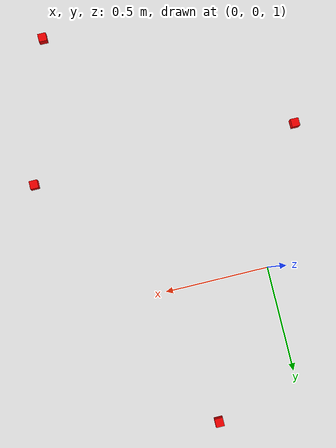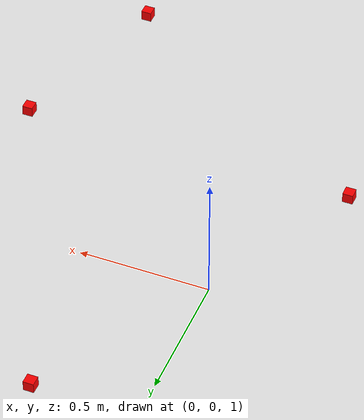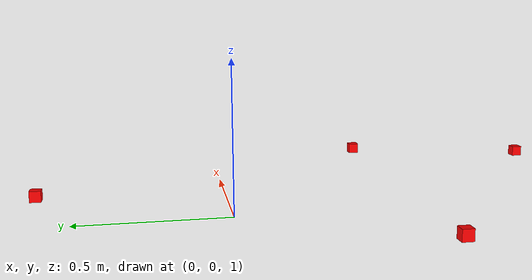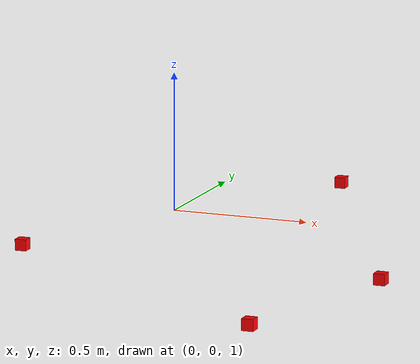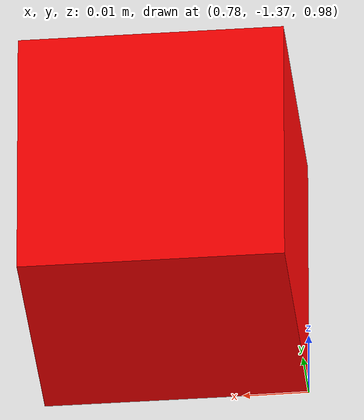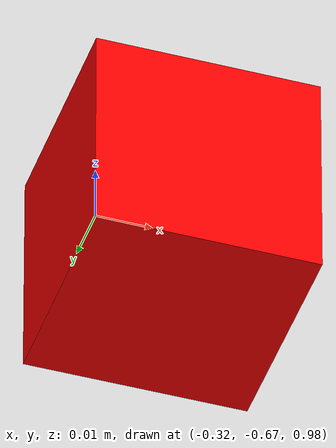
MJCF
<?xml version='1.0' encoding='utf-8'?>
<mujoco model="banana_1">
  <asset>
  </asset>
  <worldbody>
    <body name="object_fork_0" pos="-0.3 -0.65 1.0">
        <joint name="object_fork_0_joint" type="free" damping="0.0005" />
        <geom type="box" size="0.02 0.02 0.02" rgba="1 0 0 1" density="100" friction="0.95 0.3 0.1" group="1" />
    </body>
    <body name="object_spoon_0" pos="1.0 -0.65 1.0">
        <joint name="object_spoon_0_joint" type="free" damping="0.0005" />
        <geom type="box" size="0.02 0.02 0.02" rgba="1 0 0 1" density="100" friction="0.95 0.3 0.1" group="1" />
    </body>
    <body name="object_knife_0" pos="0.8 -1.35 1.0">
        <joint name="object_knife_0_joint" type="free" damping="0.0005" />
        <geom type="box" size="0.02 0.02 0.02" rgba="1 0 0 1" density="100" friction="0.95 0.3 0.1" group="1" />
    </body>
    <body name="object_chopstick_0" pos="0.4 0.65 1.0">
        <joint name="object_chopstick_0_joint" type="free" damping="0.0005" />
        <geom type="box" size="0.02 0.02 0.02" rgba="1 0 0 1" density="100" friction="0.95 0.3 0.1" group="1" />
    </body>
  </worldbody>
</mujoco>
